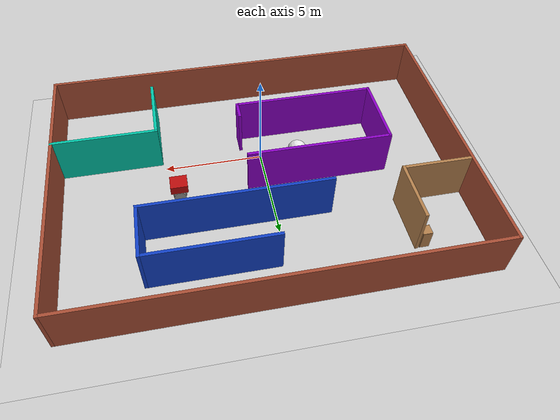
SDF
<sdf version="1.6">
 <world name="default">
  <model name="ground_plane">
   <static>1</static>
   <link name="link">
    <collision name="collision">
     <geometry><plane><normal>0 0 1</normal><size>100 100</size></plane></geometry>
     <surface>
      <contact><collide_bitmask>65535</collide_bitmask></contact>
      <friction><ode><mu>100</mu><mu2>50</mu2></ode></friction>
     </surface>
    </collision>
    <visual name="visual">
     <cast_shadows>0</cast_shadows>
     <geometry><plane><normal>0 0 1</normal><size>100 100</size></plane></geometry>
     <material>
      <script><uri>file://media/materials/scripts/gazebo.material</uri><name>Gazebo/Grey</name></script>
     </material>
    </visual>
   </link>
  </model>
  <model name="building">
   <pose>0.40966 1.94902 0 0 -0 0</pose>
   <link name="Wall_1">
    <collision name="Wall_1_Collision">
     <geometry><box><size>14 0.15 2.5</size></box></geometry>
     <pose>0 0 1.25 0 -0 0</pose>
    </collision>
    <visual name="Wall_1_Visual">
     <pose>0 0 1.25 0 -0 0</pose>
     <geometry><box><size>14 0.15 2.5</size></box></geometry>
     <material>
      <script><uri>file://media/materials/scripts/gazebo.material</uri><name>Gazebo/Bricks</name></script>
      <ambient>1 1 1 1</ambient>
     </material>
     <meta><layer>0</layer></meta>
    </visual>
    <pose>-9.925 0 0 0 -0 -1.5708</pose>
   </link>
   <link name="Wall_10">
    <collision name="Wall_10_Collision">
     <geometry><box><size>3.5 0.15 2.5</size></box></geometry>
     <pose>0 0 1.25 0 -0 0</pose>
    </collision>
    <visual name="Wall_10_Visual">
     <pose>0 0 1.25 0 -0 0</pose>
     <geometry><box><size>3.5 0.15 2.5</size></box></geometry>
     <material>
      <script><uri>file://media/materials/scripts/gazebo.material</uri><name>Gazebo/Grey</name></script>
      <ambient>0 0.764706 0.654902 1</ambient>
     </material>
     <meta><layer>0</layer></meta>
    </visual>
    <pose>4.8207 -4.04556 0 0 -0 -1.5708</pose>
   </link>
   <link name="Wall_12">
    <collision name="Wall_12_Collision">
     <geometry><box><size>7.25 0.15 2.5</size></box></geometry>
     <pose>0 0 1.25 0 -0 0</pose>
    </collision>
    <visual name="Wall_12_Visual">
     <pose>0 0 1.25 0 -0 0</pose>
     <geometry><box><size>7.25 0.15 2.5</size></box></geometry>
     <material>
      <script><uri>file://media/materials/scripts/gazebo.material</uri><name>Gazebo/Grey</name></script>
      <ambient>0.541176 0 0.768627 1</ambient>
     </material>
     <meta><layer>0</layer></meta>
    </visual>
    <pose>-3.015 0.056778 0 0 -0 3.14159</pose>
   </link>
   <link name="Wall_13">
    <collision name="Wall_13_Collision">
     <geometry><box><size>3.75 0.15 2.5</size></box></geometry>
     <pose>0 0 1.25 0 -0 0</pose>
    </collision>
    <visual name="Wall_13_Visual">
     <pose>0 0 1.25 0 -0 0</pose>
     <geometry><box><size>3.75 0.15 2.5</size></box></geometry>
     <material>
      <script><uri>file://media/materials/scripts/gazebo.material</uri><name>Gazebo/Grey</name></script>
      <ambient>0.541176 0 0.768627 1</ambient>
     </material>
     <meta><layer>0</layer></meta>
    </visual>
    <pose>-6.565 -1.74322 0 0 -0 -1.5708</pose>
   </link>
   <link name="Wall_14">
    <collision name="Wall_14_Collision">
     <geometry><box><size>7.25 0.15 2.5</size></box></geometry>
     <pose>0 0 1.25 0 -0 0</pose>
    </collision>
    <visual name="Wall_14_Visual">
     <pose>0 0 1.25 0 -0 0</pose>
     <geometry><box><size>7.25 0.15 2.5</size></box></geometry>
     <material>
      <script><uri>file://media/materials/scripts/gazebo.material</uri><name>Gazebo/Grey</name></script>
      <ambient>0.541176 0 0.768627 1</ambient>
     </material>
     <meta><layer>0</layer></meta>
    </visual>
    <pose>-3.015 -3.54322 0 0 -0 0</pose>
   </link>
   <link name="Wall_15">
    <collision name="Wall_15_Collision">
     <geometry><box><size>1 0.15 2.5</size></box></geometry>
     <pose>0 0 1.25 0 -0 0</pose>
    </collision>
    <visual name="Wall_15_Visual">
     <pose>0 0 1.25 0 -0 0</pose>
     <geometry><box><size>1 0.15 2.5</size></box></geometry>
     <material>
      <script><uri>file://media/materials/scripts/gazebo.material</uri><name>Gazebo/Grey</name></script>
      <ambient>0.541176 0 0.768627 1</ambient>
     </material>
     <meta><layer>0</layer></meta>
    </visual>
    <pose>0.535003 -3.11822 0 0 -0 1.5708</pose>
   </link>
   <link name="Wall_19">
    <collision name="Wall_19_Collision">
     <geometry><box><size>9.25 0.15 2.5</size></box></geometry>
     <pose>0 0 1.25 0 -0 0</pose>
    </collision>
    <visual name="Wall_19_Visual">
     <pose>0 0 1.25 0 -0 0</pose>
     <geometry><box><size>9.25 0.15 2.5</size></box></geometry>
     <material>
      <script><uri>file://media/materials/scripts/gazebo.material</uri><name>Gazebo/Grey</name></script>
      <ambient>0.0666667 0.25098 0.768627 1</ambient>
     </material>
     <meta><layer>0</layer></meta>
    </visual>
    <pose>1.46388 2.2991 0 0 -0 0</pose>
   </link>
   <link name="Wall_2">
    <collision name="Wall_2_Collision">
     <geometry><box><size>20 0.15 2.5</size></box></geometry>
     <pose>0 0 1.25 0 -0 0</pose>
    </collision>
    <visual name="Wall_2_Visual">
     <pose>0 0 1.25 0 -0 0</pose>
     <geometry><box><size>20 0.15 2.5</size></box></geometry>
     <material>
      <script><uri>file://media/materials/scripts/gazebo.material</uri><name>Gazebo/Bricks</name></script>
      <ambient>1 1 1 1</ambient>
     </material>
     <meta><layer>0</layer></meta>
    </visual>
    <pose>-0 -6.925 0 0 -0 0</pose>
   </link>
   <link name="Wall_20">
    <collision name="Wall_20_Collision">
     <geometry><box><size>2.75 0.15 2.5</size></box></geometry>
     <pose>0 0 1.25 0 -0 0</pose>
    </collision>
    <visual name="Wall_20_Visual">
     <pose>0 0 1.25 0 -0 0</pose>
     <geometry><box><size>2.75 0.15 2.5</size></box></geometry>
     <material>
      <script><uri>file://media/materials/scripts/gazebo.material</uri><name>Gazebo/Grey</name></script>
      <ambient>0.0666667 0.25098 0.768627 1</ambient>
     </material>
     <meta><layer>0</layer></meta>
    </visual>
    <pose>6.01388 3.5991 0 0 -0 1.5708</pose>
   </link>
   <link name="Wall_21">
    <collision name="Wall_21_Collision">
     <geometry><box><size>6.25 0.15 2.5</size></box></geometry>
     <pose>0 0 1.25 0 -0 0</pose>
    </collision>
    <visual name="Wall_21_Visual">
     <pose>0 0 1.25 0 -0 0</pose>
     <geometry><box><size>6.25 0.15 2.5</size></box></geometry>
     <material>
      <script><uri>file://media/materials/scripts/gazebo.material</uri><name>Gazebo/Grey</name></script>
      <ambient>0.0666667 0.25098 0.768627 1</ambient>
     </material>
     <meta><layer>0</layer></meta>
    </visual>
    <pose>2.96388 4.8991 0 0 -0 3.14159</pose>
   </link>
   <link name="Wall_3">
    <collision name="Wall_3_Collision">
     <geometry><box><size>14 0.15 2.5</size></box></geometry>
     <pose>0 0 1.25 0 -0 0</pose>
    </collision>
    <visual name="Wall_3_Visual">
     <pose>0 0 1.25 0 -0 0</pose>
     <geometry><box><size>14 0.15 2.5</size></box></geometry>
     <material>
      <script><uri>file://media/materials/scripts/gazebo.material</uri><name>Gazebo/Bricks</name></script>
      <ambient>1 1 1 1</ambient>
     </material>
     <meta><layer>0</layer></meta>
    </visual>
    <pose>9.925 0 0 0 -0 1.5708</pose>
   </link>
   <link name="Wall_4">
    <collision name="Wall_4_Collision">
     <geometry><box><size>20 0.15 2.5</size></box></geometry>
     <pose>0 0 1.25 0 -0 0</pose>
    </collision>
    <visual name="Wall_4_Visual">
     <pose>0 0 1.25 0 -0 0</pose>
     <geometry><box><size>20 0.15 2.5</size></box></geometry>
     <material>
      <script><uri>file://media/materials/scripts/gazebo.material</uri><name>Gazebo/Bricks</name></script>
      <ambient>1 1 1 1</ambient>
     </material>
     <meta><layer>0</layer></meta>
    </visual>
    <pose>-0 6.925 0 0 -0 3.14159</pose>
   </link>
   <link name="Wall_6">
    <collision name="Wall_6_Collision">
     <geometry><box><size>3.5 0.15 2.5</size></box></geometry>
     <pose>0 0 1.25 0 -0 0</pose>
    </collision>
    <visual name="Wall_6_Visual">
     <pose>0 0 1.25 0 -0 0</pose>
     <geometry><box><size>3.5 0.15 2.5</size></box></geometry>
     <material>
      <script><uri>file://media/materials/scripts/gazebo.material</uri><name>Gazebo/Wood</name></script>
      <ambient>1 1 1 1</ambient>
     </material>
     <meta><layer>0</layer></meta>
    </visual>
    <pose>-8.14663 2.24138 0 0 -0 0</pose>
   </link>
   <link name="Wall_7">
    <collision name="Wall_7_Collision">
     <geometry><box><size>3 0.15 2.5</size></box></geometry>
     <pose>0 0 1.25 0 -0 0</pose>
    </collision>
    <visual name="Wall_7_Visual">
     <pose>0 0 1.25 0 -0 0</pose>
     <geometry><box><size>3 0.15 2.5</size></box></geometry>
     <material>
      <script><uri>file://media/materials/scripts/gazebo.material</uri><name>Gazebo/Wood</name></script>
      <ambient>1 1 1 1</ambient>
     </material>
     <meta><layer>0</layer></meta>
    </visual>
    <pose>-6.47163 3.66638 0 0 -0 1.5708</pose>
   </link>
   <link name="Wall_9">
    <collision name="Wall_9_Collision">
     <geometry><box><size>5.25 0.15 2.5</size></box></geometry>
     <pose>0 0 1.25 0 -0 0</pose>
    </collision>
    <visual name="Wall_9_Visual">
     <pose>0 0 1.25 0 -0 0</pose>
     <geometry><box><size>5.25 0.15 2.5</size></box></geometry>
     <material>
      <script><uri>file://media/materials/scripts/gazebo.material</uri><name>Gazebo/Grey</name></script>
      <ambient>0 0.764706 0.654902 1</ambient>
     </material>
     <meta><layer>0</layer></meta>
    </visual>
    <pose>7.3707 -2.37056 0 0 -0 3.14159</pose>
   </link>
   <static>1</static>
  </model>
  <model name="cabinet">
   <static>1</static>
   <link name="cabinet_bottom_plate">
    <inertial>
     <pose>0 0 -1 0 -0 0</pose>
     <inertia><ixx>2.05</ixx><ixy>0</ixy><ixz>0</ixz><iyy>2.05</iyy><iyz>0</iyz><izz>2.05</izz></inertia>
     <mass>25</mass>
    </inertial>
    <collision name="cabinet_bottom_plate_geom">
     <pose>0 0 0.01 0 -0 0</pose>
     <geometry><box><size>0.45 0.45 0.02</size></box></geometry>
    </collision>
    <visual name="cabinet_bottom_plate_geom_visual">
     <pose>0 0 0.01 0 -0 0</pose>
     <geometry><box><size>0.45 0.45 0.02</size></box></geometry>
     <material>
      <script><uri>file://media/materials/scripts/gazebo.material</uri><name>Gazebo/Wood</name></script>
     </material>
    </visual>
    <collision name="cabinet_bottom_plate_geom_cabinet_back_plate">
     <pose>0.235 0 0.51 0 -0 0</pose>
     <geometry><box><size>0.02 0.45 1.02</size></box></geometry>
    </collision>
    <visual name="cabinet_bottom_plate_geom_cabinet_back_plate_visual">
     <pose>0.235 0 0.51 0 -0 0</pose>
     <geometry><box><size>0.02 0.45 1.02</size></box></geometry>
     <material>
      <script><uri>file://media/materials/scripts/gazebo.material</uri><name>Gazebo/Wood</name></script>
     </material>
    </visual>
    <collision name="cabinet_bottom_plate_geom_cabinet_left_plate">
     <pose>0 0.235 0.51 0 -0 0</pose>
     <geometry><box><size>0.45 0.02 1.02</size></box></geometry>
    </collision>
    <visual name="cabinet_bottom_plate_geom_cabinet_left_plate_visual">
     <pose>0 0.235 0.51 0 -0 0</pose>
     <geometry><box><size>0.45 0.02 1.02</size></box></geometry>
     <material>
      <script><uri>file://media/materials/scripts/gazebo.material</uri><name>Gazebo/Wood</name></script>
     </material>
    </visual>
    <collision name="cabinet_bottom_plate_geom_cabinet_middle_plate">
     <pose>0 0 0.51 0 -0 0</pose>
     <geometry><box><size>0.45 0.45 0.02</size></box></geometry>
    </collision>
    <visual name="cabinet_bottom_plate_geom_cabinet_middle_plate_visual">
     <pose>0 0 0.51 0 -0 0</pose>
     <geometry><box><size>0.45 0.45 0.02</size></box></geometry>
     <material>
      <script><uri>file://media/materials/scripts/gazebo.material</uri><name>Gazebo/Wood</name></script>
     </material>
    </visual>
    <collision name="cabinet_bottom_plate_geom_cabinet_right_plate">
     <pose>0 -0.235 0.51 0 -0 0</pose>
     <geometry><box><size>0.45 0.02 1.02</size></box></geometry>
    </collision>
    <visual name="cabinet_bottom_plate_geom_cabinet_right_plate_visual">
     <pose>0 -0.235 0.51 0 -0 0</pose>
     <geometry><box><size>0.45 0.02 1.02</size></box></geometry>
     <material>
      <script><uri>file://media/materials/scripts/gazebo.material</uri><name>Gazebo/Wood</name></script>
     </material>
    </visual>
    <collision name="cabinet_bottom_plate_geom_cabinet_top_plate">
     <pose>0 0 1.01 0 -0 0</pose>
     <geometry><box><size>0.45 0.45 0.02</size></box></geometry>
    </collision>
    <visual name="cabinet_bottom_plate_geom_cabinet_top_plate_visual">
     <pose>0 0 1.01 0 -0 0</pose>
     <geometry><box><size>0.45 0.45 0.02</size></box></geometry>
     <material>
      <script><uri>file://media/materials/scripts/gazebo.material</uri><name>Gazebo/Wood</name></script>
     </material>
    </visual>
   </link>
   <pose>-6.44931 6.85151 0 0 -0 0</pose>
  </model>
  <model name="lilrobo_clone">
   <link name="left_wheel">
    <inertial>
     <mass>0.139839</mass>
     <inertia>
      <ixx>0.00337426</ixx>
      <ixy>0</ixy>
      <ixz>0</ixz>
      <iyy>0.00337426</iyy>
      <iyz>0</iyz>
      <izz>0.00629276</izz>
     </inertia>
    </inertial>
    <pose>-0.540003 0.170784 0.027273 1.5707 -0 0</pose>
    <visual name="visual">
     <geometry><cylinder><radius>0.3</radius><length>0.13984</length></cylinder></geometry>
     <material>
      <lighting>1</lighting>
      <script><uri>file://media/materials/scripts/gazebo.material</uri><name>Gazebo/Grey</name></script>
      <shader type="pixel"><normal_map>__default__</normal_map></shader>
      <ambient>0 0 0 1</ambient>
      <diffuse>0.7 0.7 0.7 1</diffuse>
      <specular>0.01 0.01 0.01 1</specular>
      <emissive>0 0 0 1</emissive>
     </material>
    </visual>
    <collision name="collision">
     <geometry><cylinder><radius>0.3</radius><length>0.13984</length></cylinder></geometry>
     <surface>
      <friction>
       <ode><mu>1</mu><mu2>1</mu2><fdir1>0 0 0</fdir1><slip1>0</slip1><slip2>0</slip2></ode>
       <torsional>
        <coefficient>1</coefficient>
        <patch_radius>0</patch_radius>
        <surface_radius>0</surface_radius>
        <use_patch_radius>1</use_patch_radius>
        <ode><slip>0</slip></ode>
       </torsional>
      </friction>
      <bounce><restitution_coefficient>0</restitution_coefficient><threshold>1e+06</threshold></bounce>
      <contact>
       <collide_without_contact>0</collide_without_contact>
       <collide_without_contact_bitmask>1</collide_without_contact_bitmask>
       <collide_bitmask>1</collide_bitmask>
       <ode>
        <soft_cfm>0</soft_cfm>
        <soft_erp>0.2</soft_erp>
        <kp>1e+13</kp>
        <kd>1</kd>
        <max_vel>0.01</max_vel>
        <min_depth>0</min_depth>
       </ode>
       <bullet>
        <split_impulse>1</split_impulse>
        <split_impulse_penetration_threshold>-0.01</split_impulse_penetration_threshold>
        <soft_cfm>0</soft_cfm>
        <soft_erp>0.2</soft_erp>
        <kp>1e+13</kp>
        <kd>1</kd>
       </bullet>
      </contact>
     </surface>
    </collision>
   </link>
   <link name="right_wheel">
    <inertial>
     <mass>0.139839</mass>
     <inertia>
      <ixx>0.00337426</ixx>
      <ixy>0</ixy>
      <ixz>0</ixz>
      <iyy>0.00337426</iyy>
      <iyz>0</iyz>
      <izz>0.00629276</izz>
     </inertia>
    </inertial>
    <pose>-0.540003 0.809758 0.027273 1.5707 -0 0</pose>
    <visual name="visual">
     <geometry><cylinder><radius>0.3</radius><length>0.13984</length></cylinder></geometry>
     <material>
      <lighting>1</lighting>
      <script><uri>file://media/materials/scripts/gazebo.material</uri><name>Gazebo/Grey</name></script>
      <shader type="pixel"><normal_map>__default__</normal_map></shader>
      <ambient>0 0 0 1</ambient>
      <diffuse>0.7 0.7 0.7 1</diffuse>
      <specular>0.01 0.01 0.01 1</specular>
      <emissive>0 0 0 1</emissive>
     </material>
    </visual>
    <collision name="collision">
     <geometry><cylinder><radius>0.3</radius><length>0.13984</length></cylinder></geometry>
     <surface>
      <friction>
       <ode><mu>1</mu><mu2>1</mu2><fdir1>0 0 0</fdir1><slip1>0</slip1><slip2>0</slip2></ode>
       <torsional>
        <coefficient>1</coefficient>
        <patch_radius>0</patch_radius>
        <surface_radius>0</surface_radius>
        <use_patch_radius>1</use_patch_radius>
        <ode><slip>0</slip></ode>
       </torsional>
      </friction>
      <bounce><restitution_coefficient>0</restitution_coefficient><threshold>1e+06</threshold></bounce>
      <contact>
       <collide_without_contact>0</collide_without_contact>
       <collide_without_contact_bitmask>1</collide_without_contact_bitmask>
       <collide_bitmask>1</collide_bitmask>
       <ode>
        <soft_cfm>0</soft_cfm>
        <soft_erp>0.2</soft_erp>
        <kp>1e+13</kp>
        <kd>1</kd>
        <max_vel>0.01</max_vel>
        <min_depth>0</min_depth>
       </ode>
       <bullet>
        <split_impulse>1</split_impulse>
        <split_impulse_penetration_threshold>-0.01</split_impulse_penetration_threshold>
        <soft_cfm>0</soft_cfm>
        <soft_erp>0.2</soft_erp>
        <kp>1e+13</kp>
        <kd>1</kd>
       </bullet>
      </contact>
     </surface>
    </collision>
   </link>
   <link name="body">
    <inertial>
     <mass>0.0977333</mass>
     <inertia>
      <ixx>0.0034523</ixx>
      <ixy>0</ixy>
      <ixz>0</ixz>
      <iyy>0.00486474</iyy>
      <iyz>0</iyz>
      <izz>0.00546961</izz>
     </inertia>
    </inertial>
    <pose>-0.540003 0.490271 0.194467 0 -0 0</pose>
    <visual name="visual">
     <geometry><box><size>0.65 0.499076 0.418101</size></box></geometry>
     <material>
      <lighting>1</lighting>
      <script><uri>file://media/materials/scripts/gazebo.material</uri><name>Gazebo/Grey</name></script>
      <shader type="pixel"><normal_map>__default__</normal_map></shader>
      <ambient>0.5 0.5 0.5 1</ambient>
      <diffuse>0.7 0.7 0.7 1</diffuse>
      <specular>0.01 0.01 0.01 1</specular>
      <emissive>0 0 0 1</emissive>
     </material>
    </visual>
    <collision name="collision">
     <geometry><box><size>0.65 0.499076 0.418101</size></box></geometry>
     <surface>
      <friction>
       <ode><mu>1</mu><mu2>1</mu2><fdir1>0 0 0</fdir1><slip1>0</slip1><slip2>0</slip2></ode>
       <torsional>
        <coefficient>1</coefficient>
        <patch_radius>0</patch_radius>
        <surface_radius>0</surface_radius>
        <use_patch_radius>1</use_patch_radius>
        <ode><slip>0</slip></ode>
       </torsional>
      </friction>
      <bounce><restitution_coefficient>0</restitution_coefficient><threshold>1e+06</threshold></bounce>
      <contact>
       <collide_without_contact>0</collide_without_contact>
       <collide_without_contact_bitmask>1</collide_without_contact_bitmask>
       <collide_bitmask>1</collide_bitmask>
       <ode>
        <soft_cfm>0</soft_cfm>
        <soft_erp>0.2</soft_erp>
        <kp>1e+13</kp>
        <kd>1</kd>
        <max_vel>0.01</max_vel>
        <min_depth>0</min_depth>
       </ode>
       <bullet>
        <split_impulse>1</split_impulse>
        <split_impulse_penetration_threshold>-0.01</split_impulse_penetration_threshold>
        <soft_cfm>0</soft_cfm>
        <soft_erp>0.2</soft_erp>
        <kp>1e+13</kp>
        <kd>1</kd>
       </bullet>
      </contact>
     </surface>
    </collision>
   </link>
   <link name="head">
    <inertial>
     <mass>0.232242</mass>
     <inertia>
      <ixx>0.0165183</ixx>
      <ixy>0</ixy>
      <ixz>0</ixz>
      <iyy>0.0159662</iyy>
      <iyz>0</iyz>
      <izz>0.0286809</izz>
     </inertia>
    </inertial>
    <pose>-0.540003 0.490271 0.560255 0 -0 0</pose>
    <visual name="visual">
     <geometry><box><size>0.852475 0.869044 0.4</size></box></geometry>
     <material>
      <lighting>1</lighting>
      <script><uri>file://media/materials/scripts/gazebo.material</uri><name>Gazebo/Grey</name></script>
      <ambient>0.745098 0.05098 0.05098 1</ambient>
     </material>
    </visual>
    <collision name="collision">
     <geometry><box><size>0.852475 0.869044 0.313476</size></box></geometry>
     <surface>
      <friction>
       <ode><mu>1</mu><mu2>1</mu2><fdir1>0 0 0</fdir1><slip1>0</slip1><slip2>0</slip2></ode>
       <torsional>
        <coefficient>1</coefficient>
        <patch_radius>0</patch_radius>
        <surface_radius>0</surface_radius>
        <use_patch_radius>1</use_patch_radius>
        <ode><slip>0</slip></ode>
       </torsional>
      </friction>
      <bounce><restitution_coefficient>0</restitution_coefficient><threshold>1e+06</threshold></bounce>
      <contact>
       <collide_without_contact>0</collide_without_contact>
       <collide_without_contact_bitmask>1</collide_without_contact_bitmask>
       <collide_bitmask>1</collide_bitmask>
       <ode>
        <soft_cfm>0</soft_cfm>
        <soft_erp>0.2</soft_erp>
        <kp>1e+13</kp>
        <kd>1</kd>
        <max_vel>0.01</max_vel>
        <min_depth>0</min_depth>
       </ode>
       <bullet>
        <split_impulse>1</split_impulse>
        <split_impulse_penetration_threshold>-0.01</split_impulse_penetration_threshold>
        <soft_cfm>0</soft_cfm>
        <soft_erp>0.2</soft_erp>
        <kp>1e+13</kp>
        <kd>1</kd>
       </bullet>
      </contact>
     </surface>
    </collision>
   </link>
   <joint name="body_JOINT_left_wheel" type="revolute">
    <parent>body</parent>
    <child>left_wheel</child>
    <axis>
     <xyz>1 0 0</xyz>
     <use_parent_model_frame>0</use_parent_model_frame>
     <limit>
      <lower>-1.79769e+308</lower>
      <upper>1.79769e+308</upper>
      <effort>-1</effort>
      <velocity>-1</velocity>
     </limit>
     <dynamics>
      <spring_reference>0</spring_reference>
      <spring_stiffness>0</spring_stiffness>
      <damping>0</damping>
     </dynamics>
    </axis>
    <physics>
     <ode><limit><cfm>0</cfm><erp>0.2</erp></limit><suspension><cfm>0</cfm><erp>0.2</erp></suspension></ode>
    </physics>
   </joint>
   <joint name="body_JOINT_right_wheel" type="revolute">
    <parent>body</parent>
    <child>right_wheel</child>
    <axis>
     <xyz>1 0 0</xyz>
     <use_parent_model_frame>0</use_parent_model_frame>
     <limit>
      <lower>-1.79769e+308</lower>
      <upper>1.79769e+308</upper>
      <effort>-1</effort>
      <velocity>-1</velocity>
     </limit>
     <dynamics>
      <spring_reference>0</spring_reference>
      <spring_stiffness>0</spring_stiffness>
      <damping>0</damping>
     </dynamics>
    </axis>
    <physics>
     <ode><limit><cfm>0</cfm><erp>0.2</erp></limit><suspension><cfm>0</cfm><erp>0.2</erp></suspension></ode>
    </physics>
   </joint>
   <joint name="body_head" type="fixed">
    <parent>body</parent>
    <child>head</child>
    <physics>
     <ode><limit><cfm>0</cfm><erp>0.2</erp></limit><suspension><cfm>0</cfm><erp>0.2</erp></suspension></ode>
    </physics>
   </joint>
   <static>0</static>
   <pose>4.99783 1.51486 0.257107 0.131774 -0 0</pose>
  </model>
  <model name="ball">
   <link name="link_1">
    <inertial>
     <mass>1</mass>
     <inertia><ixx>0.1</ixx><ixy>0</ixy><ixz>0</ixz><iyy>0.1</iyy><iyz>0</iyz><izz>0.1</izz></inertia>
    </inertial>
    <visual name="visual">
     <geometry><sphere><radius>0.5</radius></sphere></geometry>
     <material>
      <lighting>1</lighting>
      <script><uri>file://media/materials/scripts/gazebo.material</uri><name>Gazebo/White</name></script>
      <shader type="pixel"><normal_map>__default__</normal_map></shader>
      <ambient>1 1 1 1</ambient>
      <diffuse>1 1 1 1</diffuse>
      <specular>0 0 0 1</specular>
      <emissive>0 0 0 1</emissive>
     </material>
    </visual>
    <collision name="collision">
     <geometry><sphere><radius>0.5</radius></sphere></geometry>
     <surface>
      <friction>
       <ode><mu>1</mu><mu2>1</mu2><fdir1>0 0 0</fdir1><slip1>0</slip1><slip2>0</slip2></ode>
       <torsional>
        <coefficient>1</coefficient>
        <patch_radius>0</patch_radius>
        <surface_radius>0</surface_radius>
        <use_patch_radius>1</use_patch_radius>
        <ode><slip>0</slip></ode>
       </torsional>
      </friction>
      <bounce><restitution_coefficient>0</restitution_coefficient><threshold>1e+06</threshold></bounce>
      <contact>
       <collide_without_contact>0</collide_without_contact>
       <collide_without_contact_bitmask>1</collide_without_contact_bitmask>
       <collide_bitmask>1</collide_bitmask>
       <ode>
        <soft_cfm>0</soft_cfm>
        <soft_erp>0.2</soft_erp>
        <kp>1e+13</kp>
        <kd>1</kd>
        <max_vel>0.01</max_vel>
        <min_depth>0</min_depth>
       </ode>
       <bullet>
        <split_impulse>1</split_impulse>
        <split_impulse_penetration_threshold>-0.01</split_impulse_penetration_threshold>
        <soft_cfm>0</soft_cfm>
        <soft_erp>0.2</soft_erp>
        <kp>1e+13</kp>
        <kd>1</kd>
       </bullet>
      </contact>
     </surface>
    </collision>
   </link>
   <static>0</static>
   <pose>-1.92073 0.265747 0.5 0 -0 0</pose>
  </model>
 </world>
</sdf>
